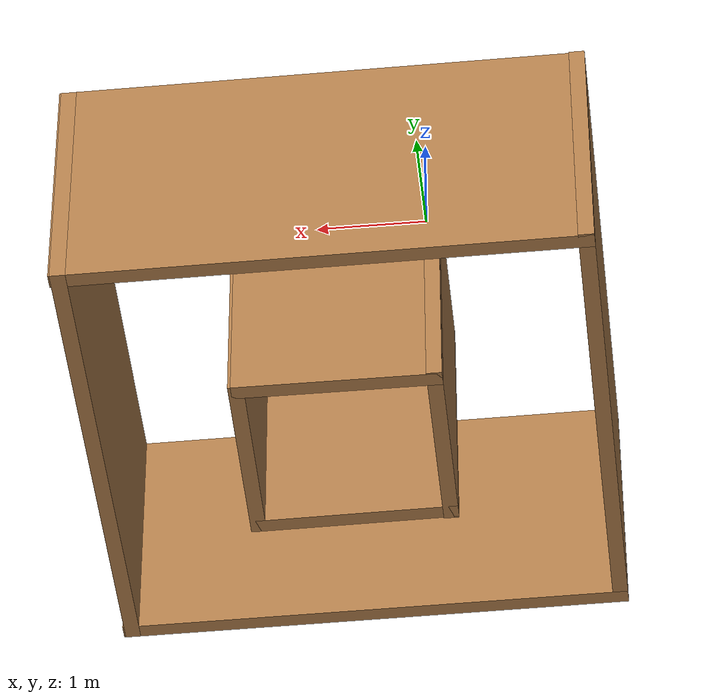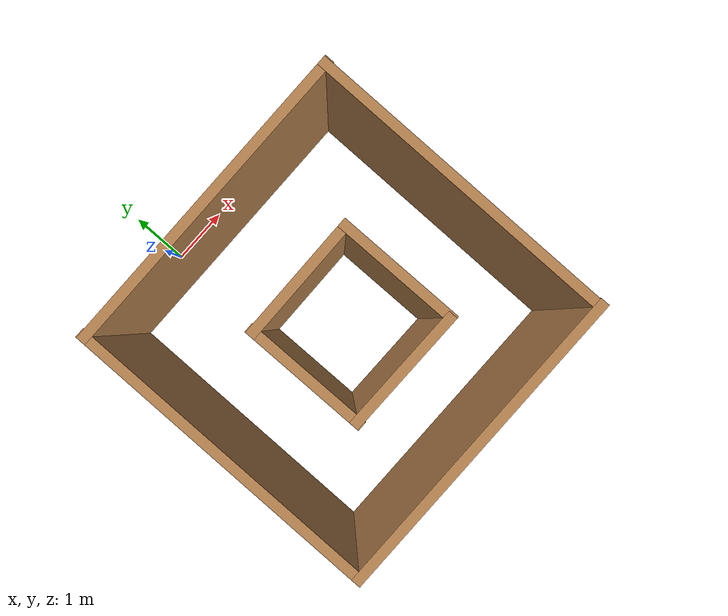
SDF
<?xml version='1.0'?>
<sdf version='1.6'>
  <model name='Circuit'>
    <pose frame=''>1.01318 -2.84286 0 0 -0 0</pose>
    <link name='Wall_10'>
      <collision name='Wall_10_Collision'>
        <geometry>
          <box>
            <size>5.02647 0.15 2.5</size>
          </box>
        </geometry>
        <pose frame=''>0 0 1.25 0 -0 0</pose>
      </collision>
      <visual name='Wall_10_Visual'>
        <pose frame=''>0 0 1.25 0 -0 0</pose>
        <geometry>
          <box>
            <size>5.02647 0.15 2.5</size>
          </box>
        </geometry>
        <material>
          <script>
            <uri>file://media/materials/scripts/gazebo.material</uri>
            <name>Gazebo/Wood</name>
          </script>
          <ambient>1 1 1 1</ambient>
        </material>
        <meta>
          <layer>0</layer>
        </meta>
      </visual>
      <pose frame=''>0 -2.45199 0 0 -0 -0.002712</pose>
    </link>
    <link name='Wall_11'>
      <collision name='Wall_11_Collision'>
        <geometry>
          <box>
            <size>5.05417 0.15 2.5</size>
          </box>
        </geometry>
        <pose frame=''>0 0 1.25 0 -0 0</pose>
      </collision>
      <visual name='Wall_11_Visual'>
        <pose frame=''>0 0 1.25 0 -0 0</pose>
        <geometry>
          <box>
            <size>5.05417 0.15 2.5</size>
          </box>
        </geometry>
        <material>
          <script>
            <uri>file://media/materials/scripts/gazebo.material</uri>
            <name>Gazebo/Wood</name>
          </script>
          <ambient>1 1 1 1</ambient>
        </material>
        <meta>
          <layer>0</layer>
        </meta>
      </visual>
      <pose frame=''>2.425 -0.006511 0 0 -0 1.5708</pose>
    </link>
    <link name='Wall_12'>
      <collision name='Wall_12_Collision'>
        <geometry>
          <box>
            <size>5.02645 0.15 2.5</size>
          </box>
        </geometry>
        <pose frame=''>0 0 1.25 0 -0 0</pose>
      </collision>
      <visual name='Wall_12_Visual'>
        <pose frame=''>0 0 1.25 0 -0 0</pose>
        <geometry>
          <box>
            <size>5.02645 0.15 2.5</size>
          </box>
        </geometry>
        <material>
          <script>
            <uri>file://media/materials/scripts/gazebo.material</uri>
            <name>Gazebo/Wood</name>
          </script>
          <ambient>1 1 1 1</ambient>
        </material>
        <meta>
          <layer>0</layer>
        </meta>
      </visual>
      <pose frame=''>0 2.44558 0 0 -0 3.14159</pose>
    </link>
    <link name='Wall_13'>
      <collision name='Wall_13_Collision'>
        <geometry>
          <box>
            <size>5.05417 0.15 2.5</size>
          </box>
        </geometry>
        <pose frame=''>0 0 1.25 0 -0 0</pose>
      </collision>
      <visual name='Wall_13_Visual'>
        <pose frame=''>0 0 1.25 0 -0 0</pose>
        <geometry>
          <box>
            <size>5.05417 0.15 2.5</size>
          </box>
        </geometry>
        <material>
          <script>
            <uri>file://media/materials/scripts/gazebo.material</uri>
            <name>Gazebo/Wood</name>
          </script>
          <ambient>1 1 1 1</ambient>
        </material>
        <meta>
          <layer>0</layer>
        </meta>
      </visual>
      <pose frame=''>-2.43823 0.006714 0 0 -0 -1.5708</pose>
    </link>
    <link name='Wall_15'>
      <collision name='Wall_15_Collision'>
        <geometry>
          <box>
            <size>2.00005 0.15 2.5</size>
          </box>
        </geometry>
        <pose frame=''>0 0 1.25 0 -0 0</pose>
      </collision>
      <visual name='Wall_15_Visual'>
        <pose frame=''>0 0 1.25 0 -0 0</pose>
        <geometry>
          <box>
            <size>2.00005 0.15 2.5</size>
          </box>
        </geometry>
        <material>
          <script>
            <uri>file://media/materials/scripts/gazebo.material</uri>
            <name>Gazebo/Wood</name>
          </script>
          <ambient>1 1 1 1</ambient>
        </material>
        <meta>
          <layer>0</layer>
        </meta>
      </visual>
      <pose frame=''>0.042766 -1.0442 0 0 -0 -0.007149</pose>
    </link>
    <link name='Wall_16'>
      <collision name='Wall_16_Collision'>
        <geometry>
          <box>
            <size>2.01327 0.15 2.5</size>
          </box>
        </geometry>
        <pose frame=''>0 0 1.25 0 -0 0</pose>
      </collision>
      <visual name='Wall_16_Visual'>
        <pose frame=''>0 0 1.25 0 -0 0</pose>
        <geometry>
          <box>
            <size>2.01327 0.15 2.5</size>
          </box>
        </geometry>
        <material>
          <script>
            <uri>file://media/materials/scripts/gazebo.material</uri>
            <name>Gazebo/Wood</name>
          </script>
          <ambient>1 1 1 1</ambient>
        </material>
        <meta>
          <layer>0</layer>
        </meta>
      </visual>
      <pose frame=''>0.987604 -0.119199 0 0 -0 1.57789</pose>
    </link>
    <link name='Wall_17'>
      <collision name='Wall_17_Collision'>
        <geometry>
          <box>
            <size>2.00005 0.15 2.5</size>
          </box>
        </geometry>
        <pose frame=''>0 0 1.25 0 -0 0</pose>
      </collision>
      <visual name='Wall_17_Visual'>
        <pose frame=''>0 0 1.25 0 -0 0</pose>
        <geometry>
          <box>
            <size>2.00005 0.15 2.5</size>
          </box>
        </geometry>
        <material>
          <script>
            <uri>file://media/materials/scripts/gazebo.material</uri>
            <name>Gazebo/Wood</name>
          </script>
          <ambient>1 1 1 1</ambient>
        </material>
        <meta>
          <layer>0</layer>
        </meta>
      </visual>
      <pose frame=''>0.029541 0.805801 0 0 -0 -3.13444</pose>
    </link>
    <link name='Wall_18'>
      <collision name='Wall_18_Collision'>
        <geometry>
          <box>
            <size>2.01327 0.15 2.5</size>
          </box>
        </geometry>
        <pose frame=''>0 0 1.25 0 -0 0</pose>
      </collision>
      <visual name='Wall_18_Visual'>
        <pose frame=''>0 0 1.25 0 -0 0</pose>
        <geometry>
          <box>
            <size>2.01327 0.15 2.5</size>
          </box>
        </geometry>
        <material>
          <script>
            <uri>file://media/materials/scripts/gazebo.material</uri>
            <name>Gazebo/Wood</name>
          </script>
          <ambient>1 1 1 1</ambient>
        </material>
        <meta>
          <layer>0</layer>
        </meta>
      </visual>
      <pose frame=''>-0.888846 -0.119199 0 0 -0 -1.5637</pose>
    </link>
    <static>1</static>
  </model>
</sdf>
